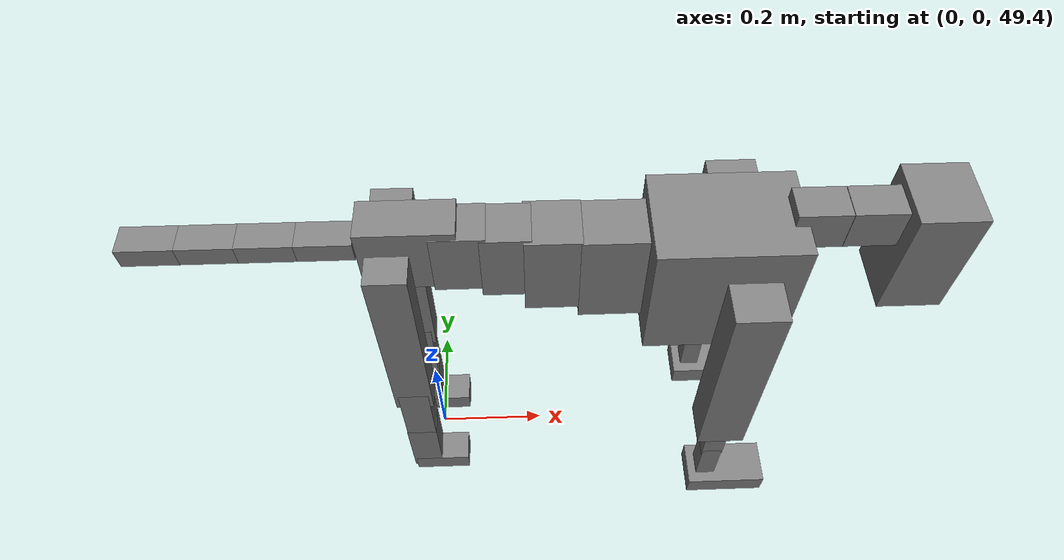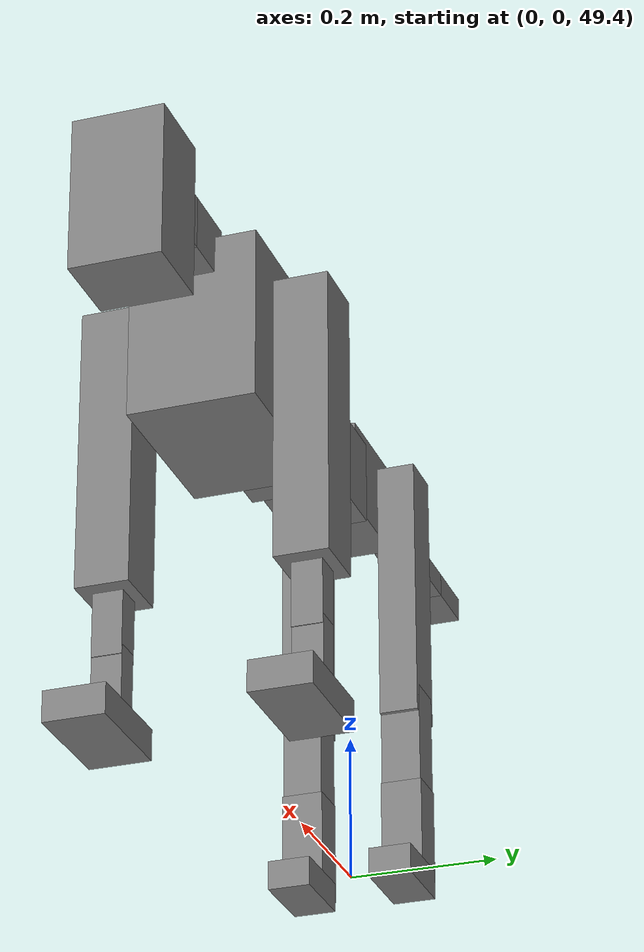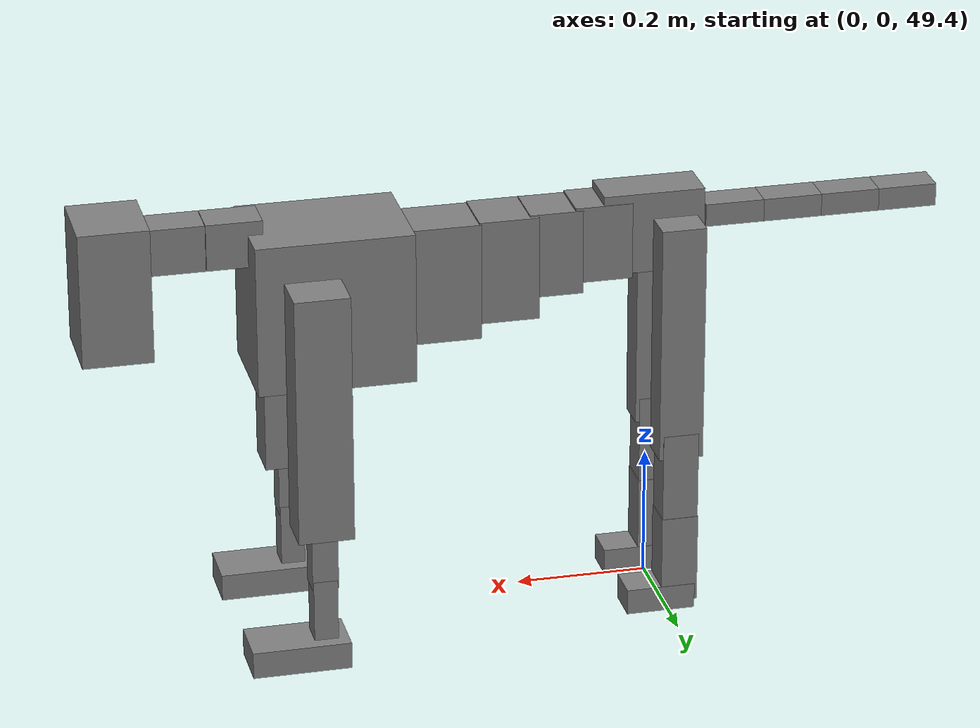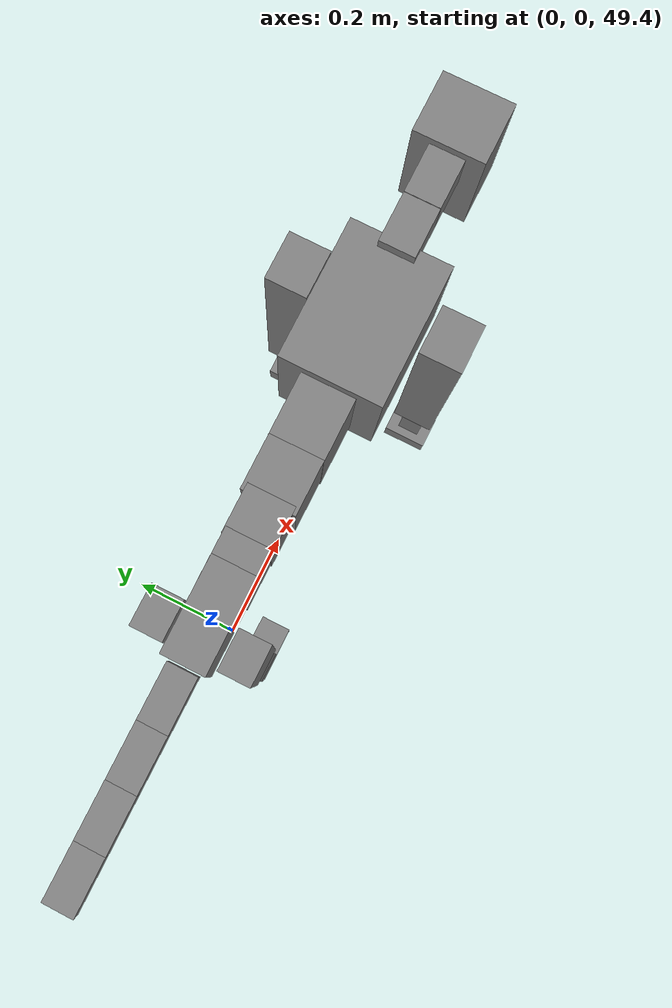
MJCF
<mujoco model="dog">

    <default>
        <joint armature="0.02" stiffness="1" damping="0.2" limited="true"/>
        <geom condim="3" friction="1 0.05 0.05" margin="0.01"/>
        <motor ctrllimited="true" ctrlrange="-1.0 1.0" forcelimited="true" gear="50"/>
    </default>

    <compiler inertiafromgeom="true" angle="radian"/>

    <option timestep="0.016" iterations="50" tolerance="1e-10" solver="Newton" jacobian="dense" cone="pyramidal"/>

    <size nconmax="20000" njmax="60000" nstack="5000000"/>
    <visual>
        <map force="0.1" zfar="30"/>
        <rgba haze="0.15 0.25 0.35 1"/>
        <quality shadowsize="2048"/>
        <global offwidth="800" offheight="800"/>
    </visual>

    <asset>
        <texture type="skybox" builtin="gradient" rgb1="0.3 0.5 0.7" rgb2="0 0 0" width="512" height="512"/>
        <texture name="texplane" type="2d" builtin="checker" rgb1=".2 .3 .4" rgb2=".1 0.15 0.2" width="512" height="512"
                 mark="cross" markrgb=".8 .8 .8"/>
        <texture name="texgeom" type="cube" builtin="flat" mark="cross" width="127" height="1278" rgb1="0.8 0.6 0.4"
                 rgb2="0.8 0.6 0.4" markrgb="1 1 1" random="0.01"/>

        <material name="matplane" reflectance="0.3" texture="texplane" texrepeat="1 1" texuniform="true"/>
        <material name="matgeom" texture="texgeom" texuniform="true" rgba="0.8 0.6 .4 1"/>
    </asset>

    <worldbody>
        <geom name="floor" pos="0 0 0" size="0 0 .25" type="plane" material="matplane" condim="3"/>

        <light directional="false" diffuse=".2 .2 .2" specular="0 0 0" pos="0 0 5" dir="0 0 -1" castshadow="false"/>
        <light mode="targetbodycom" target="torso" directional="false" diffuse=".8 .8 .8" specular="0.3 0.3 0.3"
               pos="0 0 4.0" dir="0 0 -1"/>

        <body name="root" pos="0 0 50">
            <freejoint name="root_1"/>
            <geom type="box" pos="0 0 -0.02" size="0.0774  0.0358  0.063" density="2030"/>

            <body name="spine1" pos="0.054 0 0">
                <joint name="spine1_y" axis="0 1 0" range="0 0.7" limited="true"/>
                <geom type="box" pos="0.02375 0 -0.03" size="0.04375  0.0375  0.05985" density="2030"/>

                <body name="spine2" pos="0.0612 0 0">
                    <joint name="spine2_y" axis="0 1 0" range="-0.15 0.15" limited="true"/>
                    <geom type="box" pos="0.03555  0  -0.04" size="0.04055  0.039  0.06615" density="2030"/>

                    <body name="spine3" pos="0.0730 0 0">
                        <joint name="spine3_y" axis="0 1 0" range="-0.15 0.15" limited="true"/>
                        <geom type="box" pos="0.03555  0  -0.057" size="0.04555  0.0445  0.081" density="2030"/>

                        <body name="spine4" pos="0.0780 0 0">
                            <joint name="spine4_y" axis="0 1 0" range="-0.15 0.15" limited="true"/>
                            <geom type="box" pos="0.05265  0  -0.07" size="0.05265  0.045  0.09135" density="2030"/>

                            <body name="torso" pos="0.1082 0 0">
                                <joint name="torso_y" axis="0 1 0" range="-0.15 0.15" limited="true"/>
                                <geom type="box" pos="0.11925  0  -0.085" size="0.11925  0.085  0.11745"
                                      density="2030"/>

                                <body name="neck1" pos="0.2160  0   0.0180">
                                    <joint name="neck1_y" axis="0 1 0" range="-1.2  -1" limited="true"/>
                                    <geom type="box" pos="0.0423  0  0" size="0.0423  0.03  0.036" density="2325"/>

                                    <body name="neck2" pos="0.0853  0  0">
                                        <joint name="neck2_y" axis="0 1 0" range="0.1  0" limited="true"/>
                                        <geom type="box" pos="0.0423  0  0" size="0.0423  0.03  0.036" density="2325"/>

                                        <body name="head" pos="0.0853  0  0">
                                            <joint name="head_y" axis="0 1 0" range="-0.3  -0.2" limited="true"/>
                                            <geom type="box" pos="0.0531  0  -0.055" size="0.0531  0.06  0.1044"
                                                  density="4030"/>

                                        </body>
                                    </body>
                                </body>

                                <body name="front_shoulder" pos="0.156  0   -0.0480">
                                    <joint name="front_shoulder_y" axis="0 1 0" range="-1 1.5" limited="true"/>
                                    <geom type="box" pos="0 0.13 -0.1680" size="0.0421  0.0360  0.1946" density="1158"/>
                                    <geom type="box" pos="0 -0.13 -0.1680" size="0.0421  0.0360  0.1946"
                                          density="1158"/>

                                    <body name="front_elbow" pos="0  0  -0.3360">
                                        <joint name="front_elbow_y" axis="0 1 0" range="-2 0" limited="true"/>
                                        <geom type="box" pos="0 0.13 -0.0566" size="0.0198  0.0202  0.0566"
                                              density="1081"/>
                                        <geom type="box" pos="0 -0.13 -0.0566" size="0.0198  0.0202  0.0566"
                                              density="1081"/>

                                        <body name="front_wrist" pos="0  0  -0.1132">
                                            <joint name="front_wrist_y" axis="0 1 0" range="-0.2 0" limited="true"/>
                                            <geom type="box" pos="0 0.13 -0.0491" size="0.0183  0.0203  0.0623"
                                                  density="1664"/>
                                            <geom type="box" pos="0 -0.13 -0.0491" size="0.0183  0.0203  0.0623"
                                                  density="1664"/>

                                            <body name="front_finger_end" pos="0  0  -0.0982">
                                                <joint name="front_finger_y" axis="0 1 0" range="-0.4 1"
                                                       limited="true"/>
                                                <geom type="box" pos="0.0409  0.13  -0.0058"
                                                      size="0.0750  0.0409  0.0208" density="1515"/>
                                                <geom type="box" pos="0.0409  -0.13  -0.0058"
                                                      size="0.0750  0.0409  0.0208" density="1515"/>

                                            </body>

                                        </body>
                                    </body>
                                </body>

                            </body>
                        </body>
                    </body>
                </body>
            </body>

            <body name="back_hip" pos="-0.03 0 -0.018">
                <joint name="back_hip_y" axis="0 1 0" range="-1.5 0.3" limited="true"/>
                <geom type="box" pos="0 0.07 -0.1641" size="0.0339  0.0266  0.1869" density="1154"/>
                <geom type="box" pos="0 -0.07 -0.1641" size="0.0339  0.0266  0.1869" density="1154"/>

                <body name="back_knee" pos="0  0  -0.3283">
                    <joint name="back_knee_y" axis="0 1 0" range="0 2.8" limited="true"/>
                    <geom type="box" pos="0 0.07 -0.0669" size="0.0274  0.0270  0.0825" density="1227"/>
                    <geom type="box" pos="0 -0.07 -0.0669" size="0.0274  0.0270  0.0825" density="1227"/>

                    <body name="back_ankle" pos="0  0  -0.1339">
                        <joint name="back_ankle_y" axis="0 1 0" range="-2.2 0" limited="true"/>
                        <geom type="box" pos="0 0.07 -0.0590" size="0.0281  0.0281  0.0702" density="1284"/>
                        <geom type="box" pos="0 -0.07 -0.0590" size="0.0281  0.0281  0.0702" density="1284"/>

                        <body name="back_toe_end" pos="0  0  -0.1179">
                            <joint name="back_toe_y" axis="0 1 0" range="-0.4 1" limited="true"/>
                            <geom type="box" pos="0.0288  0.07  -0.0050" size="0.0529  0.0288  0.0200" density="1515"/>
                            <geom type="box" pos="0.0288  -0.07  -0.0050" size="0.0529  0.0288  0.0200" density="1515"/>

                        </body>
                    </body>
                </body>
            </body>

            <body name="tail1" pos="-0.074 0 -0.006">
                <joint name="tail1_y" axis="0 1 0" range="-0.2 0.2" limited="true"/>
                <geom type="box" pos="-0.0536  0  0" size="0.045  0.025  0.0175" density="1587"/>

                <body name="tail2" pos="-0.09 0 0">
                    <joint name="tail2_y" axis="0 1 0" range="-0.2 0.2" limited="true"/>
                    <geom type="box" pos="-0.0536  0  0" size="0.045  0.025  0.0175" density="1587"/>

                    <body name="tail3" pos="-0.09 0 0">
                        <joint name="tail3_y" axis="0 1 0" range="-0.2 0.2" limited="true"/>
                        <geom type="box" pos="-0.0536  0  0" size="0.045  0.025  0.0175" density="1587"/>

                        <body name="tail4" pos="-0.09 0 0">
                            <joint name="tail4_y" axis="0 1 0" range="-0.2 0.2" limited="true"/>
                            <geom type="box" pos="-0.0536  0  0" size="0.045  0.025  0.0175" density="1587"/>

                        </body>
                    </body>
                </body>
            </body>
        </body>
    </worldbody>

    <actuator>
        <motor joint="spine1_y" forcerange="-150 150     "/>
        <motor joint="spine2_y" forcerange="-150 150     "/>
        <motor joint="spine3_y" forcerange="-150 150     "/>
        <motor joint="spine4_y" forcerange="-150 150     "/>
        <motor joint="torso_y" forcerange="-150 150     "/>
        <motor joint="neck1_y" forcerange="-100 100       "/>
        <motor joint="neck2_y" forcerange="-100 100       "/>
        <motor joint="head_y" forcerange="-150 150       "/>
        <motor joint="front_shoulder_y" forcerange="-165.93 173.92"/>
        <motor joint="front_elbow_y" forcerange="-101.36 145.69"/>
        <motor joint="front_wrist_y" forcerange="-81.42 81.00"/>
        <motor joint="front_finger_y" forcerange="-83.50 94.66"/>
        <motor joint="back_hip_y" forcerange="-347.65 206.46"/>
        <motor joint="back_knee_y" forcerange="-257.26 335.05"/>
        <motor joint="back_angle_y" forcerange="-243.05 106.10"/>
        <motor joint="back_toe_y" forcerange="-89.65 61.02"/>
        <motor joint="tail1_y" forcerange="-50 50     "/>
        <motor joint="tail2_y" forcerange="-50 50     "/>
        <motor joint="tail3_y" forcerange="-50 50     "/>
        <motor joint="tail4_y" forcerange="-50 50     "/>
    </actuator>
</mujoco>
